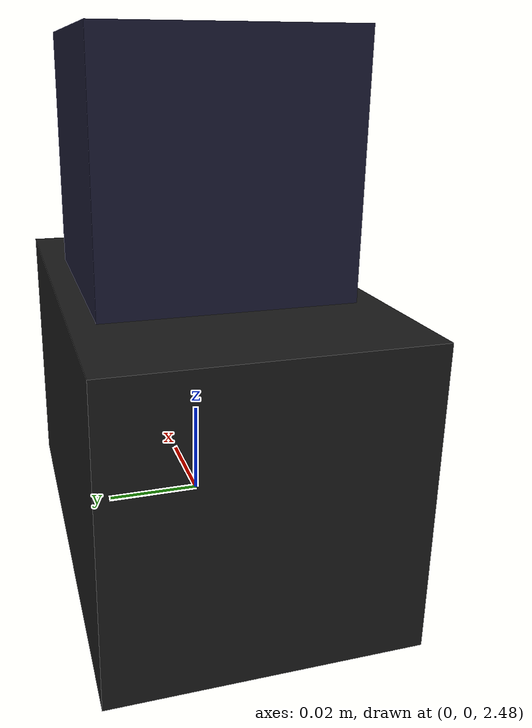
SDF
<?xml version="1.0" ?>
<sdf version="1.7">
  <model name="radar_station">
    <static>true</static>

    <!-- ===== 雷达基座平台 (3.4m x 1.16m, 高2.5m) ===== -->
    <link name="base_link">
      <pose>0 0 0 0 0 0</pose>
    </link>

    <!-- 支撑柱和平台已移除，仅保留三脚架支撑传感器 -->

    <!-- 三脚架/平台/支撑柱均已移除，传感器直接挂在base_link上 -->

    <!-- Livox HAP 激光雷达 (平台上)                    -->
    <!-- 高度: 2.5m (距离地面)                        -->
    <!-- pitch=0.2618rad(15°) 向下倾斜覆盖赛场         -->
    <!-- 垂直FOV ±45° → 覆盖从向上30°到向下60°        -->
    <link name="livox_hap">
      <pose>0 0 2.5 0 0 0</pose>
      <visual name="lidar_body">
        <geometry><box><size>0.1 0.06 0.06</size></box></geometry>
        <material><ambient>0.05 0.05 0.05 1</ambient><diffuse>0.1 0.1 0.1 1</diffuse></material>
      </visual>
      <collision name="c"><geometry><box><size>0.1 0.06 0.06</size></box></geometry></collision>

      <sensor name="livox_hap_lidar" type="gpu_lidar">
        <pose>0 0 0 0 0 0</pose>
        <always_on>true</always_on>
        <update_rate>10</update_rate>
        <topic>livox/lidar</topic>
        <visualize>true</visualize>
        <lidar>
          <scan>
            <horizontal>
              <!-- 水平FOV: ±125° (250°总) -->
              <samples>2500</samples>
              <resolution>1</resolution>
              <min_angle>-2.182</min_angle>
              <max_angle>2.182</max_angle>
            </horizontal>
            <vertical>
              <!-- 垂直FOV: ±45° (90°总)，覆盖近处到远处 -->
              <samples>360</samples>
              <resolution>1</resolution>
              <min_angle>-0.7854</min_angle>
              <max_angle>0.7854</max_angle>
            </vertical>
          </scan>
          <range>
            <min>0.2</min>
            <max>150.0</max>
            <resolution>0.002</resolution>
          </range>
          <noise>
            <type>gaussian</type>
            <mean>0.0</mean>
            <stddev>0.01</stddev>
          </noise>
        </lidar>
      </sensor>
    </link>
    <joint name="j_lidar" type="fixed"><parent>base_link</parent><child>livox_hap</child></joint>

    <!-- 工业相机 (固定在激光雷达正上方)                 -->
    <!-- CS060 + 6mm镜头, FOV≈61°                     -->
    <!-- pitch=0.3491rad(20°) 向下倾斜                 -->
    <!-- 垂直半角~20° → 覆盖从水平到向下40°            -->
    <!-- 能看到近处约x=-13.5处的赛场区域                -->
    <link name="camera_link">
      <pose>0 0 2.555 0 0 0</pose>
      <visual name="camera_body">
        <geometry><box><size>0.05 0.05 0.05</size></box></geometry>
        <material><ambient>0.05 0.05 0.12 1</ambient><diffuse>0.1 0.1 0.2 1</diffuse></material>
      </visual>
      <collision name="c"><geometry><box><size>0.05 0.05 0.05</size></box></geometry></collision>

      <sensor name="radar_camera" type="camera">
        <pose>0 0 0 0 0 0</pose>
        <always_on>true</always_on>
        <update_rate>30</update_rate>
        <topic>radar/camera</topic>
        <visualize>true</visualize>
        <camera>
          <!-- CS060 + 6mm镜头: FOV≈61° -->
          <horizontal_fov>1.065</horizontal_fov>
          <image>
            <width>3072</width>
            <height>2048</height>
            <format>R8G8B8</format>
          </image>
          <clip>
            <near>0.1</near>
            <far>100</far>
          </clip>
          <noise>
            <type>gaussian</type>
            <mean>0.0</mean>
            <stddev>0.007</stddev>
          </noise>
        </camera>
      </sensor>
    </link>
    <joint name="j_camera" type="fixed"><parent>livox_hap</parent><child>camera_link</child></joint>

  </model>
</sdf>
